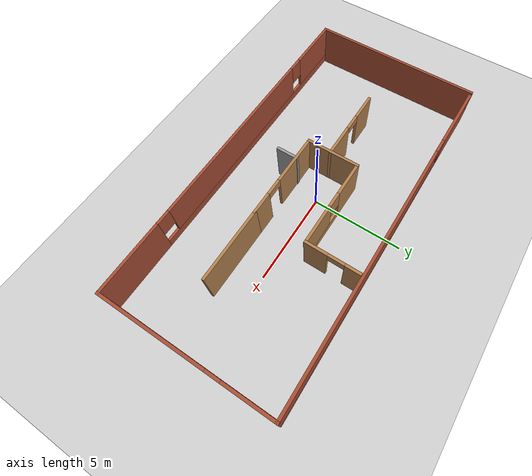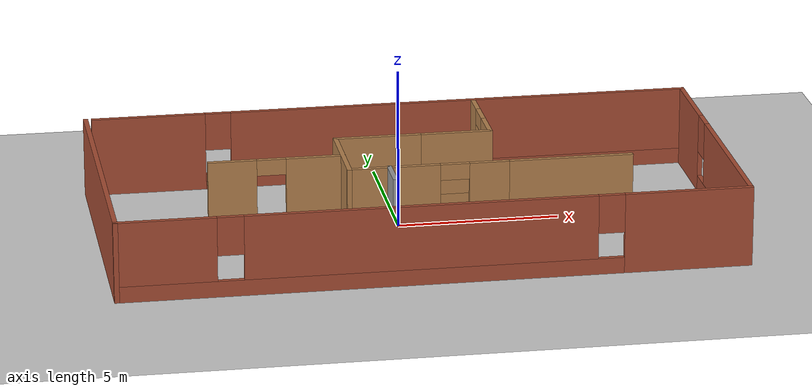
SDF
<sdf version="1.6">
 <world name="default">
  <plugin name="hello" filename="libhello.so"/>
  <light name="sun" type="directional">
   <pose>0 0 10 0 -0 0</pose>
   <diffuse>0.8 0.8 0.8 1</diffuse>
   <specular>0.2 0.2 0.2 1</specular>
   <attenuation>
    <range>1000</range>
    <constant>0.9</constant>
    <linear>0.01</linear>
    <quadratic>0.001</quadratic>
   </attenuation>
   <direction>-0.5 0.1 -0.9</direction>
  </light>
  <model name="ground_plane">
   <static>1</static>
   <link name="link">
    <collision name="collision">
     <geometry><plane><normal>0 0 1</normal><size>100 100</size></plane></geometry>
     <surface>
      <contact><collide_bitmask>65535</collide_bitmask></contact>
      <friction><ode><mu>100</mu><mu2>50</mu2></ode></friction>
     </surface>
    </collision>
    <visual name="visual">
     <cast_shadows>0</cast_shadows>
     <geometry><plane><normal>0 0 1</normal><size>100 100</size></plane></geometry>
     <material>
      <script><uri>file://media/materials/scripts/gazebo.material</uri><name>Gazebo/Grey</name></script>
     </material>
    </visual>
   </link>
  </model>
  <gravity>0 0 -9.8</gravity>
  <magnetic_field>6e-06 2.3e-05 -4.2e-05</magnetic_field>
  <atmosphere type="adiabatic"/>
  <physics name="default_physics" default="0" type="ode">
   <max_step_size>0.001</max_step_size>
   <real_time_factor>1</real_time_factor>
   <real_time_update_rate>1000</real_time_update_rate>
  </physics>
  <scene><ambient>0.4 0.4 0.4 1</ambient><background>0.7 0.7 0.7 1</background><shadows>1</shadows></scene>
  <audio><device>default</device></audio>
  <spherical_coordinates>
   <surface_model>EARTH_WGS84</surface_model>
   <latitude_deg>0</latitude_deg>
   <longitude_deg>0</longitude_deg>
   <elevation>0</elevation>
   <heading_deg>0</heading_deg>
  </spherical_coordinates>
  <model name="Untitled">
   <pose>0.343369 -0.337893 0 0 -0 0</pose>
   <link name="Wall_11">
    <pose>0.125 4.675 0 0 -0 0</pose>
    <visual name="Wall_11_Visual_0">
     <pose>-7.70908 0 1.25 0 -0 0</pose>
     <geometry><box><size>3.58184 0.15 2.5</size></box></geometry>
     <material>
      <script><uri>file://media/materials/scripts/gazebo.material</uri><name>Gazebo/Bricks</name></script>
      <ambient>1 1 1 1</ambient>
     </material>
     <meta><layer>0</layer></meta>
    </visual>
    <collision name="Wall_11_Collision_0">
     <geometry><box><size>3.58184 0.15 2.5</size></box></geometry>
     <pose>-7.70908 0 1.25 0 -0 0</pose>
    </collision>
    <visual name="Wall_11_Visual_1">
     <pose>1.79092 0 0.25 0 -0 0</pose>
     <geometry><box><size>15.4182 0.15 0.5</size></box></geometry>
     <material>
      <script><uri>file://media/materials/scripts/gazebo.material</uri><name>Gazebo/Bricks</name></script>
      <ambient>1 1 1 1</ambient>
     </material>
     <meta><layer>0</layer></meta>
    </visual>
    <collision name="Wall_11_Collision_1">
     <geometry><box><size>15.4182 0.15 0.5</size></box></geometry>
     <pose>1.79092 0 0.25 0 -0 0</pose>
    </collision>
    <visual name="Wall_11_Visual_2">
     <pose>2.19092 0 1.5 0 -0 0</pose>
     <geometry><box><size>14.6182 0.15 2</size></box></geometry>
     <material>
      <script><uri>file://media/materials/scripts/gazebo.material</uri><name>Gazebo/Bricks</name></script>
      <ambient>1 1 1 1</ambient>
     </material>
     <meta><layer>0</layer></meta>
    </visual>
    <collision name="Wall_11_Collision_2">
     <geometry><box><size>14.6182 0.15 2</size></box></geometry>
     <pose>2.19092 0 1.5 0 -0 0</pose>
    </collision>
    <visual name="Wall_11_Visual_3">
     <pose>-5.51816 0 1.9 0 -0 0</pose>
     <geometry><box><size>0.8 0.15 1.2</size></box></geometry>
     <material>
      <script><uri>file://media/materials/scripts/gazebo.material</uri><name>Gazebo/Bricks</name></script>
      <ambient>1 1 1 1</ambient>
     </material>
     <meta><layer>0</layer></meta>
    </visual>
    <collision name="Wall_11_Collision_3">
     <geometry><box><size>0.8 0.15 1.2</size></box></geometry>
     <pose>-5.51816 0 1.9 0 -0 0</pose>
    </collision>
   </link>
   <link name="Wall_12">
    <pose>9.55 -0 0 0 -0 -1.5708</pose>
    <visual name="Wall_12_Visual_0">
     <pose>-3.35805 0 1.25 0 -0 0</pose>
     <geometry><box><size>2.7839 0.15 2.5</size></box></geometry>
     <material>
      <script><uri>file://media/materials/scripts/gazebo.material</uri><name>Gazebo/Bricks</name></script>
      <ambient>1 1 1 1</ambient>
     </material>
     <meta><layer>0</layer></meta>
    </visual>
    <collision name="Wall_12_Collision_0">
     <geometry><box><size>2.7839 0.15 2.5</size></box></geometry>
     <pose>-3.35805 0 1.25 0 -0 0</pose>
    </collision>
    <visual name="Wall_12_Visual_1">
     <pose>1.39195 0 0.25 0 -0 0</pose>
     <geometry><box><size>6.7161 0.15 0.5</size></box></geometry>
     <material>
      <script><uri>file://media/materials/scripts/gazebo.material</uri><name>Gazebo/Bricks</name></script>
      <ambient>1 1 1 1</ambient>
     </material>
     <meta><layer>0</layer></meta>
    </visual>
    <collision name="Wall_12_Collision_1">
     <geometry><box><size>6.7161 0.15 0.5</size></box></geometry>
     <pose>1.39195 0 0.25 0 -0 0</pose>
    </collision>
    <visual name="Wall_12_Visual_2">
     <pose>1.79195 0 1.5 0 -0 0</pose>
     <geometry><box><size>5.9161 0.15 2</size></box></geometry>
     <material>
      <script><uri>file://media/materials/scripts/gazebo.material</uri><name>Gazebo/Bricks</name></script>
      <ambient>1 1 1 1</ambient>
     </material>
     <meta><layer>0</layer></meta>
    </visual>
    <collision name="Wall_12_Collision_2">
     <geometry><box><size>5.9161 0.15 2</size></box></geometry>
     <pose>1.79195 0 1.5 0 -0 0</pose>
    </collision>
    <visual name="Wall_12_Visual_3">
     <pose>-1.5661 0 1.9 0 -0 0</pose>
     <geometry><box><size>0.8 0.15 1.2</size></box></geometry>
     <material>
      <script><uri>file://media/materials/scripts/gazebo.material</uri><name>Gazebo/Bricks</name></script>
      <ambient>1 1 1 1</ambient>
     </material>
     <meta><layer>0</layer></meta>
    </visual>
    <collision name="Wall_12_Collision_3">
     <geometry><box><size>0.8 0.15 1.2</size></box></geometry>
     <pose>-1.5661 0 1.9 0 -0 0</pose>
    </collision>
   </link>
   <link name="Wall_13">
    <pose>0 -4.675 0 0 -0 3.14159</pose>
    <visual name="Wall_13_Visual_0">
     <pose>-7.65909 0 1.25 0 -0 0</pose>
     <geometry><box><size>3.93181 0.15 2.5</size></box></geometry>
     <material>
      <script><uri>file://media/materials/scripts/gazebo.material</uri><name>Gazebo/Bricks</name></script>
      <ambient>1 1 1 1</ambient>
     </material>
     <meta><layer>0</layer></meta>
    </visual>
    <collision name="Wall_13_Collision_0">
     <geometry><box><size>3.93181 0.15 2.5</size></box></geometry>
     <pose>-7.65909 0 1.25 0 -0 0</pose>
    </collision>
    <visual name="Wall_13_Visual_1">
     <pose>1.96591 0 0.25 0 -0 0</pose>
     <geometry><box><size>15.3182 0.15 0.5</size></box></geometry>
     <material>
      <script><uri>file://media/materials/scripts/gazebo.material</uri><name>Gazebo/Bricks</name></script>
      <ambient>1 1 1 1</ambient>
     </material>
     <meta><layer>0</layer></meta>
    </visual>
    <collision name="Wall_13_Collision_1">
     <geometry><box><size>15.3182 0.15 0.5</size></box></geometry>
     <pose>1.96591 0 0.25 0 -0 0</pose>
    </collision>
    <visual name="Wall_13_Visual_2">
     <pose>0.43164 0 1.5 0 -0 0</pose>
     <geometry><box><size>10.6497 0.15 2</size></box></geometry>
     <material>
      <script><uri>file://media/materials/scripts/gazebo.material</uri><name>Gazebo/Bricks</name></script>
      <ambient>1 1 1 1</ambient>
     </material>
     <meta><layer>0</layer></meta>
    </visual>
    <collision name="Wall_13_Collision_2">
     <geometry><box><size>10.6497 0.15 2</size></box></geometry>
     <pose>0.43164 0 1.5 0 -0 0</pose>
    </collision>
    <visual name="Wall_13_Visual_3">
     <pose>8.09073 0 1.5 0 -0 0</pose>
     <geometry><box><size>3.06853 0.15 2</size></box></geometry>
     <material>
      <script><uri>file://media/materials/scripts/gazebo.material</uri><name>Gazebo/Bricks</name></script>
      <ambient>1 1 1 1</ambient>
     </material>
     <meta><layer>0</layer></meta>
    </visual>
    <collision name="Wall_13_Collision_3">
     <geometry><box><size>3.06853 0.15 2</size></box></geometry>
     <pose>8.09073 0 1.5 0 -0 0</pose>
    </collision>
    <visual name="Wall_13_Visual_4">
     <pose>-5.29319 0 1.9 0 -0 0</pose>
     <geometry><box><size>0.8 0.15 1.2</size></box></geometry>
     <material>
      <script><uri>file://media/materials/scripts/gazebo.material</uri><name>Gazebo/Bricks</name></script>
      <ambient>1 1 1 1</ambient>
     </material>
     <meta><layer>0</layer></meta>
    </visual>
    <collision name="Wall_13_Collision_4">
     <geometry><box><size>0.8 0.15 1.2</size></box></geometry>
     <pose>-5.29319 0 1.9 0 -0 0</pose>
    </collision>
    <visual name="Wall_13_Visual_5">
     <pose>6.15646 0 1.9 0 -0 0</pose>
     <geometry><box><size>0.8 0.15 1.2</size></box></geometry>
     <material>
      <script><uri>file://media/materials/scripts/gazebo.material</uri><name>Gazebo/Bricks</name></script>
      <ambient>1 1 1 1</ambient>
     </material>
     <meta><layer>0</layer></meta>
    </visual>
    <collision name="Wall_13_Collision_5">
     <geometry><box><size>0.8 0.15 1.2</size></box></geometry>
     <pose>6.15646 0 1.9 0 -0 0</pose>
    </collision>
   </link>
   <link name="Wall_14">
    <collision name="Wall_14_Collision">
     <geometry><box><size>9.5 0.15 2.5</size></box></geometry>
     <pose>0 0 1.25 0 -0 0</pose>
    </collision>
    <visual name="Wall_14_Visual">
     <pose>0 0 1.25 0 -0 0</pose>
     <geometry><box><size>9.5 0.15 2.5</size></box></geometry>
     <material>
      <script><uri>file://media/materials/scripts/gazebo.material</uri><name>Gazebo/Bricks</name></script>
      <ambient>1 1 1 1</ambient>
     </material>
     <meta><layer>0</layer></meta>
    </visual>
    <pose>-9.55 -0 0 0 -0 1.5708</pose>
   </link>
   <link name="Wall_16">
    <collision name="Wall_16_Collision">
     <geometry><box><size>3 0.15 2.5</size></box></geometry>
     <pose>0 0 1.25 0 -0 0</pose>
    </collision>
    <visual name="Wall_16_Visual">
     <pose>0 0 1.25 0 -0 0</pose>
     <geometry><box><size>3 0.15 2.5</size></box></geometry>
     <material>
      <script><uri>file://media/materials/scripts/gazebo.material</uri><name>Gazebo/Wood</name></script>
      <ambient>1 1 1 1</ambient>
     </material>
     <meta><layer>0</layer></meta>
    </visual>
    <pose>-2.09316 0.225679 0 0 -0 1.5708</pose>
   </link>
   <link name="Wall_17">
    <pose>0.331842 1.65068 0 0 -0 0</pose>
    <visual name="Wall_17_Visual_0">
     <pose>-1.52526 0 1.25 0 -0 0</pose>
     <geometry><box><size>1.94948 0.15 2.5</size></box></geometry>
     <material>
      <script><uri>file://media/materials/scripts/gazebo.material</uri><name>Gazebo/Wood</name></script>
      <ambient>1 1 1 1</ambient>
     </material>
     <meta><layer>0</layer></meta>
    </visual>
    <collision name="Wall_17_Collision_0">
     <geometry><box><size>1.94948 0.15 2.5</size></box></geometry>
     <pose>-1.52526 0 1.25 0 -0 0</pose>
    </collision>
    <visual name="Wall_17_Visual_1">
     <pose>0.97474 0 0.25 0 -0 0</pose>
     <geometry><box><size>3.05052 0.15 0.5</size></box></geometry>
     <material>
      <script><uri>file://media/materials/scripts/gazebo.material</uri><name>Gazebo/Wood</name></script>
      <ambient>1 1 1 1</ambient>
     </material>
     <meta><layer>0</layer></meta>
    </visual>
    <collision name="Wall_17_Collision_1">
     <geometry><box><size>3.05052 0.15 0.5</size></box></geometry>
     <pose>0.97474 0 0.25 0 -0 0</pose>
    </collision>
    <visual name="Wall_17_Visual_2">
     <pose>1.37474 0 1.5 0 -0 0</pose>
     <geometry><box><size>2.25052 0.15 2</size></box></geometry>
     <material>
      <script><uri>file://media/materials/scripts/gazebo.material</uri><name>Gazebo/Wood</name></script>
      <ambient>1 1 1 1</ambient>
     </material>
     <meta><layer>0</layer></meta>
    </visual>
    <collision name="Wall_17_Collision_2">
     <geometry><box><size>2.25052 0.15 2</size></box></geometry>
     <pose>1.37474 0 1.5 0 -0 0</pose>
    </collision>
    <visual name="Wall_17_Visual_3">
     <pose>-0.15052 0 1.9 0 -0 0</pose>
     <geometry><box><size>0.8 0.15 1.2</size></box></geometry>
     <material>
      <script><uri>file://media/materials/scripts/gazebo.material</uri><name>Gazebo/Wood</name></script>
      <ambient>1 1 1 1</ambient>
     </material>
     <meta><layer>0</layer></meta>
    </visual>
    <collision name="Wall_17_Collision_3">
     <geometry><box><size>0.8 0.15 1.2</size></box></geometry>
     <pose>-0.15052 0 1.9 0 -0 0</pose>
    </collision>
   </link>
   <link name="Wall_18">
    <pose>2.75684 3.07568 0 0 -0 1.5708</pose>
    <visual name="Wall_18_Visual_0">
     <pose>-0.873959 0 1.25 0 -0 0</pose>
     <geometry><box><size>1.25208 0.15 2.5</size></box></geometry>
     <material>
      <script><uri>file://media/materials/scripts/gazebo.material</uri><name>Gazebo/Wood</name></script>
      <ambient>0.760784 0.662745 0.627451 1</ambient>
     </material>
     <meta><layer>0</layer></meta>
    </visual>
    <collision name="Wall_18_Collision_0">
     <geometry><box><size>1.25208 0.15 2.5</size></box></geometry>
     <pose>-0.873959 0 1.25 0 -0 0</pose>
    </collision>
    <visual name="Wall_18_Visual_1">
     <pose>1.07604 0 1.25 0 -0 0</pose>
     <geometry><box><size>0.847918 0.15 2.5</size></box></geometry>
     <material>
      <script><uri>file://media/materials/scripts/gazebo.material</uri><name>Gazebo/Wood</name></script>
      <ambient>0.760784 0.662745 0.627451 1</ambient>
     </material>
     <meta><layer>0</layer></meta>
    </visual>
    <collision name="Wall_18_Collision_1">
     <geometry><box><size>0.847918 0.15 2.5</size></box></geometry>
     <pose>1.07604 0 1.25 0 -0 0</pose>
    </collision>
    <visual name="Wall_18_Visual_2">
     <pose>0.202082 0 2.25 0 -0 0</pose>
     <geometry><box><size>0.9 0.15 0.5</size></box></geometry>
     <material>
      <script><uri>file://media/materials/scripts/gazebo.material</uri><name>Gazebo/Wood</name></script>
      <ambient>0.760784 0.662745 0.627451 1</ambient>
     </material>
     <meta><layer>0</layer></meta>
    </visual>
    <collision name="Wall_18_Collision_2">
     <geometry><box><size>0.9 0.15 0.5</size></box></geometry>
     <pose>0.202082 0 2.25 0 -0 0</pose>
    </collision>
   </link>
   <link name="Wall_20">
    <collision name="Wall_20_Collision">
     <geometry><box><size>4 0.15 2.5</size></box></geometry>
     <pose>0 0 1.25 0 -0 0</pose>
    </collision>
    <visual name="Wall_20_Visual">
     <pose>0 0 1.25 0 -0 0</pose>
     <geometry><box><size>4 0.15 2.5</size></box></geometry>
     <material>
      <script><uri>file://media/materials/scripts/gazebo.material</uri><name>Gazebo/Wood</name></script>
      <ambient>0.996078 0.47451 0.0196078 1</ambient>
     </material>
     <meta><layer>0</layer></meta>
    </visual>
    <pose>4.68184 -1.19932 0 0 -0 0</pose>
   </link>
   <link name="Wall_22">
    <pose>-4.13835 0.101761 0 0 -0 3.14159</pose>
    <visual name="Wall_22_Visual_0">
     <pose>-1.20367 0 1.25 0 -0 0</pose>
     <geometry><box><size>1.84266 0.15 2.5</size></box></geometry>
     <material>
      <script><uri>file://media/materials/scripts/gazebo.material</uri><name>Gazebo/Wood</name></script>
      <ambient>0.760784 0.662745 0.627451 1</ambient>
     </material>
     <meta><layer>0</layer></meta>
    </visual>
    <collision name="Wall_22_Collision_0">
     <geometry><box><size>1.84266 0.15 2.5</size></box></geometry>
     <pose>-1.20367 0 1.25 0 -0 0</pose>
    </collision>
    <visual name="Wall_22_Visual_1">
     <pose>1.37133 0 1.25 0 -0 0</pose>
     <geometry><box><size>1.50734 0.15 2.5</size></box></geometry>
     <material>
      <script><uri>file://media/materials/scripts/gazebo.material</uri><name>Gazebo/Wood</name></script>
      <ambient>0.760784 0.662745 0.627451 1</ambient>
     </material>
     <meta><layer>0</layer></meta>
    </visual>
    <collision name="Wall_22_Collision_1">
     <geometry><box><size>1.50734 0.15 2.5</size></box></geometry>
     <pose>1.37133 0 1.25 0 -0 0</pose>
    </collision>
    <visual name="Wall_22_Visual_2">
     <pose>0.167663 0 2.25 0 -0 0</pose>
     <geometry><box><size>0.9 0.15 0.5</size></box></geometry>
     <material>
      <script><uri>file://media/materials/scripts/gazebo.material</uri><name>Gazebo/Wood</name></script>
      <ambient>0.760784 0.662745 0.627451 1</ambient>
     </material>
     <meta><layer>0</layer></meta>
    </visual>
    <collision name="Wall_22_Collision_2">
     <geometry><box><size>0.9 0.15 0.5</size></box></geometry>
     <pose>0.167663 0 2.25 0 -0 0</pose>
    </collision>
   </link>
   <link name="Wall_24">
    <collision name="Wall_24_Collision">
     <geometry><box><size>1.25 0.15 2.5</size></box></geometry>
     <pose>0 0 1.25 0 -0 0</pose>
    </collision>
    <visual name="Wall_24_Visual">
     <pose>0 0 1.25 0 -0 0</pose>
     <geometry><box><size>1.25 0.15 2.5</size></box></geometry>
     <material>
      <script><uri>file://media/materials/scripts/gazebo.material</uri><name>Gazebo/Grey</name></script>
      <ambient>1 1 1 1</ambient>
     </material>
     <meta><layer>0</layer></meta>
    </visual>
    <pose>-0.857097 -1.71467 0 0 -0 -1.5708</pose>
   </link>
   <link name="Wall_8">
    <pose>0.331842 -1.19932 0 0 -0 3.14159</pose>
    <visual name="Wall_8_Visual_0">
     <pose>-1.88548 0 1.25 0 -0 0</pose>
     <geometry><box><size>1.22904 0.15 2.5</size></box></geometry>
     <material>
      <script><uri>file://media/materials/scripts/gazebo.material</uri><name>Gazebo/Wood</name></script>
      <ambient>1 1 1 1</ambient>
     </material>
     <meta><layer>0</layer></meta>
    </visual>
    <collision name="Wall_8_Collision_0">
     <geometry><box><size>1.22904 0.15 2.5</size></box></geometry>
     <pose>-1.88548 0 1.25 0 -0 0</pose>
    </collision>
    <visual name="Wall_8_Visual_1">
     <pose>1.06452 0 1.25 0 -0 0</pose>
     <geometry><box><size>2.87096 0.15 2.5</size></box></geometry>
     <material>
      <script><uri>file://media/materials/scripts/gazebo.material</uri><name>Gazebo/Wood</name></script>
      <ambient>1 1 1 1</ambient>
     </material>
     <meta><layer>0</layer></meta>
    </visual>
    <collision name="Wall_8_Collision_1">
     <geometry><box><size>2.87096 0.15 2.5</size></box></geometry>
     <pose>1.06452 0 1.25 0 -0 0</pose>
    </collision>
    <visual name="Wall_8_Visual_2">
     <pose>-0.820965 0 2.25 0 -0 0</pose>
     <geometry><box><size>0.9 0.15 0.5</size></box></geometry>
     <material>
      <script><uri>file://media/materials/scripts/gazebo.material</uri><name>Gazebo/Wood</name></script>
      <ambient>1 1 1 1</ambient>
     </material>
     <meta><layer>0</layer></meta>
    </visual>
    <collision name="Wall_8_Collision_2">
     <geometry><box><size>0.9 0.15 0.5</size></box></geometry>
     <pose>-0.820965 0 2.25 0 -0 0</pose>
    </collision>
   </link>
   <static>1</static>
  </model>
 </world>
</sdf>
